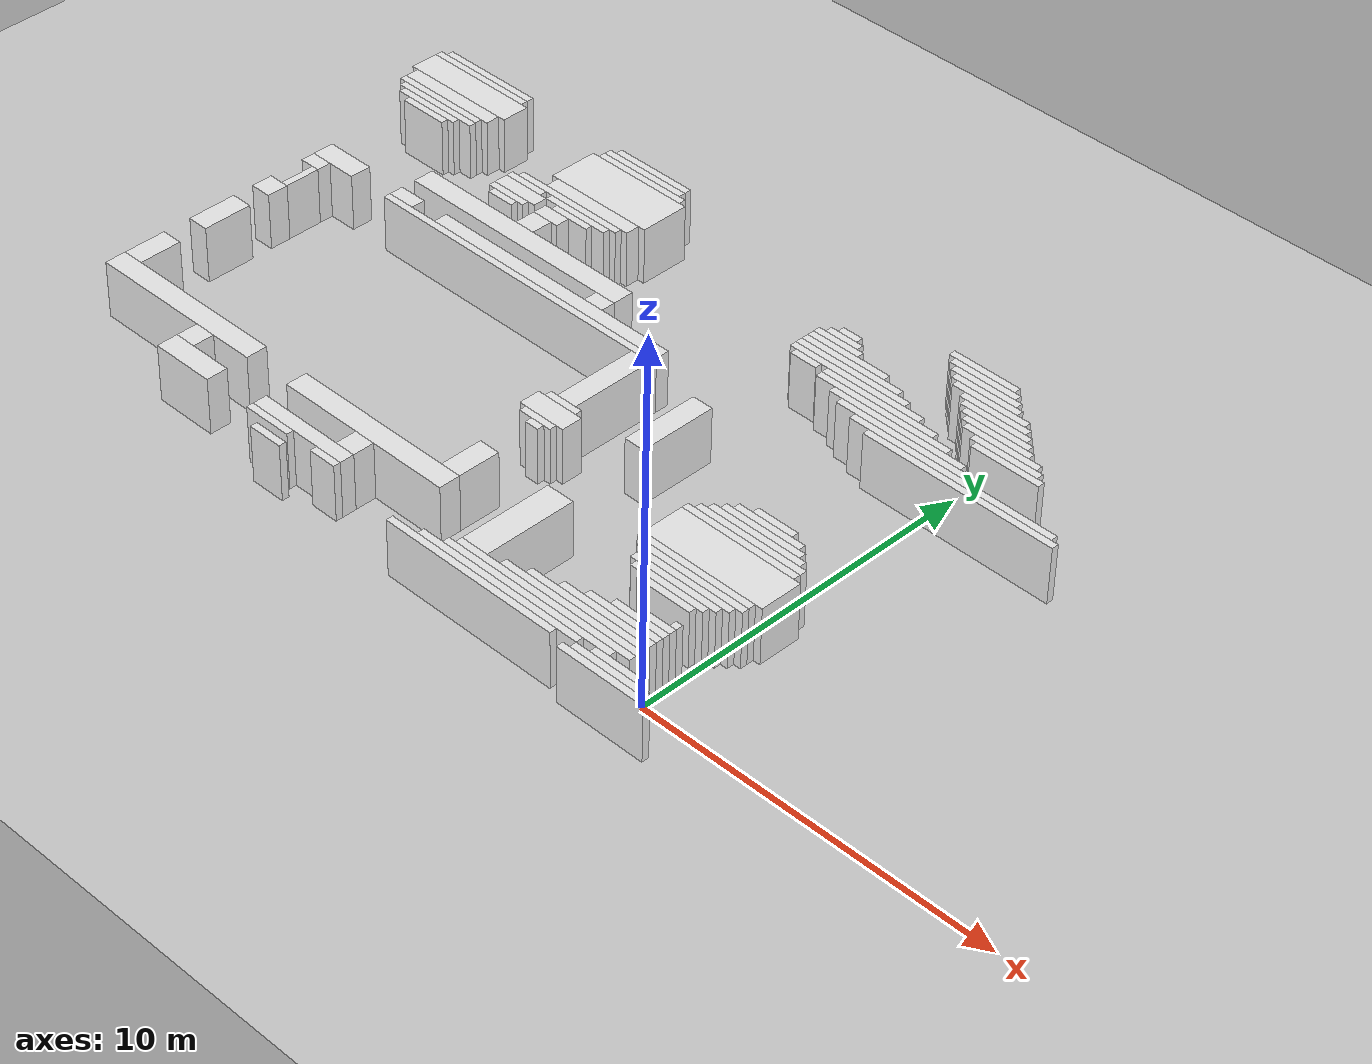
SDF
<sdf version="1.7">
 <world name="default">
  <model name="ground_plane">
   <static>1</static>
   <link name="link">
    <collision name="collision">
     <geometry><plane><normal>0 0 1</normal><size>120 120</size></plane></geometry>
    </collision>
    <visual name="visual">
     <geometry><plane><normal>0 0 1</normal><size>120 120</size></plane></geometry>
     <material>
      <script><uri>file://media/materials/scripts/gazebo.material</uri><name>Gazebo/Grey</name></script>
     </material>
    </visual>
   </link>
  </model>
  <model name="random_complex_03_model">
   <static>1</static>
   <link name="obs_1207">
    <pose>-18.3000 12.7000 0.8000 0 0 0</pose>
    <collision name="obs_1207_col"><geometry><box><size>3.0000 0.2000 1.6000</size></box></geometry></collision>
    <visual name="obs_1207_vis">
     <geometry><box><size>3.0000 0.2000 1.6000</size></box></geometry>
     <material>
      <script><uri>file://media/materials/scripts/gazebo.material</uri><name>Gazebo/White</name></script>
     </material>
    </visual>
   </link>
   <link name="obs_1208">
    <pose>-12.4000 12.7000 0.8000 0 0 0</pose>
    <collision name="obs_1208_col"><geometry><box><size>2.4000 0.2000 1.6000</size></box></geometry></collision>
    <visual name="obs_1208_vis">
     <geometry><box><size>2.4000 0.2000 1.6000</size></box></geometry>
     <material>
      <script><uri>file://media/materials/scripts/gazebo.material</uri><name>Gazebo/White</name></script>
     </material>
    </visual>
   </link>
   <link name="obs_1213">
    <pose>-18.4000 12.5000 0.8000 0 0 0</pose>
    <collision name="obs_1213_col"><geometry><box><size>3.2000 0.2000 1.6000</size></box></geometry></collision>
    <visual name="obs_1213_vis">
     <geometry><box><size>3.2000 0.2000 1.6000</size></box></geometry>
     <material>
      <script><uri>file://media/materials/scripts/gazebo.material</uri><name>Gazebo/White</name></script>
     </material>
    </visual>
   </link>
   <link name="obs_1214">
    <pose>-12.5000 12.5000 0.8000 0 0 0</pose>
    <collision name="obs_1214_col"><geometry><box><size>2.6000 0.2000 1.6000</size></box></geometry></collision>
    <visual name="obs_1214_vis">
     <geometry><box><size>2.6000 0.2000 1.6000</size></box></geometry>
     <material>
      <script><uri>file://media/materials/scripts/gazebo.material</uri><name>Gazebo/White</name></script>
     </material>
    </visual>
   </link>
   <link name="obs_1215">
    <pose>-1.4000 12.5000 0.8000 0 0 0</pose>
    <collision name="obs_1215_col"><geometry><box><size>2.0000 0.2000 1.6000</size></box></geometry></collision>
    <visual name="obs_1215_vis">
     <geometry><box><size>2.0000 0.2000 1.6000</size></box></geometry>
     <material>
      <script><uri>file://media/materials/scripts/gazebo.material</uri><name>Gazebo/White</name></script>
     </material>
    </visual>
   </link>
   <link name="obs_1220">
    <pose>-12.4000 12.3000 0.8000 0 0 0</pose>
    <collision name="obs_1220_col"><geometry><box><size>2.8000 0.2000 1.6000</size></box></geometry></collision>
    <visual name="obs_1220_vis">
     <geometry><box><size>2.8000 0.2000 1.6000</size></box></geometry>
     <material>
      <script><uri>file://media/materials/scripts/gazebo.material</uri><name>Gazebo/White</name></script>
     </material>
    </visual>
   </link>
   <link name="obs_1221">
    <pose>-1.2000 12.3000 0.8000 0 0 0</pose>
    <collision name="obs_1221_col"><geometry><box><size>2.0000 0.2000 1.6000</size></box></geometry></collision>
    <visual name="obs_1221_vis">
     <geometry><box><size>2.0000 0.2000 1.6000</size></box></geometry>
     <material>
      <script><uri>file://media/materials/scripts/gazebo.material</uri><name>Gazebo/White</name></script>
     </material>
    </visual>
   </link>
   <link name="obs_1224">
    <pose>-1.0000 12.1000 0.8000 0 0 0</pose>
    <collision name="obs_1224_col"><geometry><box><size>2.0000 0.2000 1.6000</size></box></geometry></collision>
    <visual name="obs_1224_vis">
     <geometry><box><size>2.0000 0.2000 1.6000</size></box></geometry>
     <material>
      <script><uri>file://media/materials/scripts/gazebo.material</uri><name>Gazebo/White</name></script>
     </material>
    </visual>
   </link>
   <link name="obs_1232">
    <pose>-0.8000 11.9000 0.8000 0 0 0</pose>
    <collision name="obs_1232_col"><geometry><box><size>2.0000 0.2000 1.6000</size></box></geometry></collision>
    <visual name="obs_1232_vis">
     <geometry><box><size>2.0000 0.2000 1.6000</size></box></geometry>
     <material>
      <script><uri>file://media/materials/scripts/gazebo.material</uri><name>Gazebo/White</name></script>
     </material>
    </visual>
   </link>
   <link name="obs_1235">
    <pose>-18.3000 12.0000 0.8000 0 0 0</pose>
    <collision name="obs_1235_col"><geometry><box><size>3.4000 0.8000 1.6000</size></box></geometry></collision>
    <visual name="obs_1235_vis">
     <geometry><box><size>3.4000 0.8000 1.6000</size></box></geometry>
     <material>
      <script><uri>file://media/materials/scripts/gazebo.material</uri><name>Gazebo/White</name></script>
     </material>
    </visual>
   </link>
   <link name="obs_1236">
    <pose>-0.5000 11.7000 0.8000 0 0 0</pose>
    <collision name="obs_1236_col"><geometry><box><size>2.2000 0.2000 1.6000</size></box></geometry></collision>
    <visual name="obs_1236_vis">
     <geometry><box><size>2.2000 0.2000 1.6000</size></box></geometry>
     <material>
      <script><uri>file://media/materials/scripts/gazebo.material</uri><name>Gazebo/White</name></script>
     </material>
    </visual>
   </link>
   <link name="obs_1240">
    <pose>-0.2000 11.5000 0.8000 0 0 0</pose>
    <collision name="obs_1240_col"><geometry><box><size>2.0000 0.2000 1.6000</size></box></geometry></collision>
    <visual name="obs_1240_vis">
     <geometry><box><size>2.0000 0.2000 1.6000</size></box></geometry>
     <material>
      <script><uri>file://media/materials/scripts/gazebo.material</uri><name>Gazebo/White</name></script>
     </material>
    </visual>
   </link>
   <link name="obs_1244">
    <pose>-18.3000 11.4000 0.8000 0 0 0</pose>
    <collision name="obs_1244_col"><geometry><box><size>3.0000 0.4000 1.6000</size></box></geometry></collision>
    <visual name="obs_1244_vis">
     <geometry><box><size>3.0000 0.4000 1.6000</size></box></geometry>
     <material>
      <script><uri>file://media/materials/scripts/gazebo.material</uri><name>Gazebo/White</name></script>
     </material>
    </visual>
   </link>
   <link name="obs_1247">
    <pose>-4.5000 11.3000 0.8000 0 0 0</pose>
    <collision name="obs_1247_col"><geometry><box><size>0.6000 0.2000 1.6000</size></box></geometry></collision>
    <visual name="obs_1247_vis">
     <geometry><box><size>0.6000 0.2000 1.6000</size></box></geometry>
     <material>
      <script><uri>file://media/materials/scripts/gazebo.material</uri><name>Gazebo/White</name></script>
     </material>
    </visual>
   </link>
   <link name="obs_1248">
    <pose>0.0000 11.3000 0.8000 0 0 0</pose>
    <collision name="obs_1248_col"><geometry><box><size>2.0000 0.2000 1.6000</size></box></geometry></collision>
    <visual name="obs_1248_vis">
     <geometry><box><size>2.0000 0.2000 1.6000</size></box></geometry>
     <material>
      <script><uri>file://media/materials/scripts/gazebo.material</uri><name>Gazebo/White</name></script>
     </material>
    </visual>
   </link>
   <link name="obs_1251">
    <pose>-18.4000 11.1000 0.8000 0 0 0</pose>
    <collision name="obs_1251_col"><geometry><box><size>2.8000 0.2000 1.6000</size></box></geometry></collision>
    <visual name="obs_1251_vis">
     <geometry><box><size>2.8000 0.2000 1.6000</size></box></geometry>
     <material>
      <script><uri>file://media/materials/scripts/gazebo.material</uri><name>Gazebo/White</name></script>
     </material>
    </visual>
   </link>
   <link name="obs_1252">
    <pose>-4.5000 11.1000 0.8000 0 0 0</pose>
    <collision name="obs_1252_col"><geometry><box><size>1.0000 0.2000 1.6000</size></box></geometry></collision>
    <visual name="obs_1252_vis">
     <geometry><box><size>1.0000 0.2000 1.6000</size></box></geometry>
     <material>
      <script><uri>file://media/materials/scripts/gazebo.material</uri><name>Gazebo/White</name></script>
     </material>
    </visual>
   </link>
   <link name="obs_1253">
    <pose>0.2000 11.1000 0.8000 0 0 0</pose>
    <collision name="obs_1253_col"><geometry><box><size>2.0000 0.2000 1.6000</size></box></geometry></collision>
    <visual name="obs_1253_vis">
     <geometry><box><size>2.0000 0.2000 1.6000</size></box></geometry>
     <material>
      <script><uri>file://media/materials/scripts/gazebo.material</uri><name>Gazebo/White</name></script>
     </material>
    </visual>
   </link>
   <link name="obs_1256">
    <pose>-12.4000 11.5000 0.8000 0 0 0</pose>
    <collision name="obs_1256_col"><geometry><box><size>3.2000 1.4000 1.6000</size></box></geometry></collision>
    <visual name="obs_1256_vis">
     <geometry><box><size>3.2000 1.4000 1.6000</size></box></geometry>
     <material>
      <script><uri>file://media/materials/scripts/gazebo.material</uri><name>Gazebo/White</name></script>
     </material>
    </visual>
   </link>
   <link name="obs_1262">
    <pose>-18.3000 10.9000 0.8000 0 0 0</pose>
    <collision name="obs_1262_col"><geometry><box><size>2.6000 0.2000 1.6000</size></box></geometry></collision>
    <visual name="obs_1262_vis">
     <geometry><box><size>2.6000 0.2000 1.6000</size></box></geometry>
     <material>
      <script><uri>file://media/materials/scripts/gazebo.material</uri><name>Gazebo/White</name></script>
     </material>
    </visual>
   </link>
   <link name="obs_1263">
    <pose>-4.5000 10.9000 0.8000 0 0 0</pose>
    <collision name="obs_1263_col"><geometry><box><size>1.4000 0.2000 1.6000</size></box></geometry></collision>
    <visual name="obs_1263_vis">
     <geometry><box><size>1.4000 0.2000 1.6000</size></box></geometry>
     <material>
      <script><uri>file://media/materials/scripts/gazebo.material</uri><name>Gazebo/White</name></script>
     </material>
    </visual>
   </link>
   <link name="obs_1264">
    <pose>0.4000 10.9000 0.8000 0 0 0</pose>
    <collision name="obs_1264_col"><geometry><box><size>2.0000 0.2000 1.6000</size></box></geometry></collision>
    <visual name="obs_1264_vis">
     <geometry><box><size>2.0000 0.2000 1.6000</size></box></geometry>
     <material>
      <script><uri>file://media/materials/scripts/gazebo.material</uri><name>Gazebo/White</name></script>
     </material>
    </visual>
   </link>
   <link name="obs_1270">
    <pose>-18.4000 10.7000 0.8000 0 0 0</pose>
    <collision name="obs_1270_col"><geometry><box><size>2.0000 0.2000 1.6000</size></box></geometry></collision>
    <visual name="obs_1270_vis">
     <geometry><box><size>2.0000 0.2000 1.6000</size></box></geometry>
     <material>
      <script><uri>file://media/materials/scripts/gazebo.material</uri><name>Gazebo/White</name></script>
     </material>
    </visual>
   </link>
   <link name="obs_1271">
    <pose>-4.0000 10.7000 0.8000 0 0 0</pose>
    <collision name="obs_1271_col"><geometry><box><size>2.4000 0.2000 1.6000</size></box></geometry></collision>
    <visual name="obs_1271_vis">
     <geometry><box><size>2.4000 0.2000 1.6000</size></box></geometry>
     <material>
      <script><uri>file://media/materials/scripts/gazebo.material</uri><name>Gazebo/White</name></script>
     </material>
    </visual>
   </link>
   <link name="obs_1272">
    <pose>0.7000 10.7000 0.8000 0 0 0</pose>
    <collision name="obs_1272_col"><geometry><box><size>2.2000 0.2000 1.6000</size></box></geometry></collision>
    <visual name="obs_1272_vis">
     <geometry><box><size>2.2000 0.2000 1.6000</size></box></geometry>
     <material>
      <script><uri>file://media/materials/scripts/gazebo.material</uri><name>Gazebo/White</name></script>
     </material>
    </visual>
   </link>
   <link name="obs_1275">
    <pose>-12.4000 10.6000 0.8000 0 0 0</pose>
    <collision name="obs_1275_col"><geometry><box><size>2.8000 0.4000 1.6000</size></box></geometry></collision>
    <visual name="obs_1275_vis">
     <geometry><box><size>2.8000 0.4000 1.6000</size></box></geometry>
     <material>
      <script><uri>file://media/materials/scripts/gazebo.material</uri><name>Gazebo/White</name></script>
     </material>
    </visual>
   </link>
   <link name="obs_1279">
    <pose>-18.3000 10.5000 0.8000 0 0 0</pose>
    <collision name="obs_1279_col"><geometry><box><size>1.4000 0.2000 1.6000</size></box></geometry></collision>
    <visual name="obs_1279_vis">
     <geometry><box><size>1.4000 0.2000 1.6000</size></box></geometry>
     <material>
      <script><uri>file://media/materials/scripts/gazebo.material</uri><name>Gazebo/White</name></script>
     </material>
    </visual>
   </link>
   <link name="obs_1280">
    <pose>-3.7000 10.5000 0.8000 0 0 0</pose>
    <collision name="obs_1280_col"><geometry><box><size>3.0000 0.2000 1.6000</size></box></geometry></collision>
    <visual name="obs_1280_vis">
     <geometry><box><size>3.0000 0.2000 1.6000</size></box></geometry>
     <material>
      <script><uri>file://media/materials/scripts/gazebo.material</uri><name>Gazebo/White</name></script>
     </material>
    </visual>
   </link>
   <link name="obs_1281">
    <pose>1.0000 10.5000 0.8000 0 0 0</pose>
    <collision name="obs_1281_col"><geometry><box><size>2.0000 0.2000 1.6000</size></box></geometry></collision>
    <visual name="obs_1281_vis">
     <geometry><box><size>2.0000 0.2000 1.6000</size></box></geometry>
     <material>
      <script><uri>file://media/materials/scripts/gazebo.material</uri><name>Gazebo/White</name></script>
     </material>
    </visual>
   </link>
   <link name="obs_1290">
    <pose>-12.9000 10.3000 0.8000 0 0 0</pose>
    <collision name="obs_1290_col"><geometry><box><size>3.4000 0.2000 1.6000</size></box></geometry></collision>
    <visual name="obs_1290_vis">
     <geometry><box><size>3.4000 0.2000 1.6000</size></box></geometry>
     <material>
      <script><uri>file://media/materials/scripts/gazebo.material</uri><name>Gazebo/White</name></script>
     </material>
    </visual>
   </link>
   <link name="obs_1291">
    <pose>-3.5000 10.3000 0.8000 0 0 0</pose>
    <collision name="obs_1291_col"><geometry><box><size>3.4000 0.2000 1.6000</size></box></geometry></collision>
    <visual name="obs_1291_vis">
     <geometry><box><size>3.4000 0.2000 1.6000</size></box></geometry>
     <material>
      <script><uri>file://media/materials/scripts/gazebo.material</uri><name>Gazebo/White</name></script>
     </material>
    </visual>
   </link>
   <link name="obs_1292">
    <pose>1.2000 10.3000 0.8000 0 0 0</pose>
    <collision name="obs_1292_col"><geometry><box><size>2.0000 0.2000 1.6000</size></box></geometry></collision>
    <visual name="obs_1292_vis">
     <geometry><box><size>2.0000 0.2000 1.6000</size></box></geometry>
     <material>
      <script><uri>file://media/materials/scripts/gazebo.material</uri><name>Gazebo/White</name></script>
     </material>
    </visual>
   </link>
   <link name="obs_1300">
    <pose>-14.2000 10.1000 0.8000 0 0 0</pose>
    <collision name="obs_1300_col"><geometry><box><size>1.2000 0.2000 1.6000</size></box></geometry></collision>
    <visual name="obs_1300_vis">
     <geometry><box><size>1.2000 0.2000 1.6000</size></box></geometry>
     <material>
      <script><uri>file://media/materials/scripts/gazebo.material</uri><name>Gazebo/White</name></script>
     </material>
    </visual>
   </link>
   <link name="obs_1301">
    <pose>-12.4000 10.1000 0.8000 0 0 0</pose>
    <collision name="obs_1301_col"><geometry><box><size>2.0000 0.2000 1.6000</size></box></geometry></collision>
    <visual name="obs_1301_vis">
     <geometry><box><size>2.0000 0.2000 1.6000</size></box></geometry>
     <material>
      <script><uri>file://media/materials/scripts/gazebo.material</uri><name>Gazebo/White</name></script>
     </material>
    </visual>
   </link>
   <link name="obs_1302">
    <pose>-3.2000 10.1000 0.8000 0 0 0</pose>
    <collision name="obs_1302_col"><geometry><box><size>4.0000 0.2000 1.6000</size></box></geometry></collision>
    <visual name="obs_1302_vis">
     <geometry><box><size>4.0000 0.2000 1.6000</size></box></geometry>
     <material>
      <script><uri>file://media/materials/scripts/gazebo.material</uri><name>Gazebo/White</name></script>
     </material>
    </visual>
   </link>
   <link name="obs_1309">
    <pose>-12.4000 9.9000 0.8000 0 0 0</pose>
    <collision name="obs_1309_col"><geometry><box><size>1.2000 0.2000 1.6000</size></box></geometry></collision>
    <visual name="obs_1309_vis">
     <geometry><box><size>1.2000 0.2000 1.6000</size></box></geometry>
     <material>
      <script><uri>file://media/materials/scripts/gazebo.material</uri><name>Gazebo/White</name></script>
     </material>
    </visual>
   </link>
   <link name="obs_1310">
    <pose>-4.6000 9.9000 0.8000 0 0 0</pose>
    <collision name="obs_1310_col"><geometry><box><size>0.8000 0.2000 1.6000</size></box></geometry></collision>
    <visual name="obs_1310_vis">
     <geometry><box><size>0.8000 0.2000 1.6000</size></box></geometry>
     <material>
      <script><uri>file://media/materials/scripts/gazebo.material</uri><name>Gazebo/White</name></script>
     </material>
    </visual>
   </link>
   <link name="obs_1311">
    <pose>-2.3000 9.9000 0.8000 0 0 0</pose>
    <collision name="obs_1311_col"><geometry><box><size>3.4000 0.2000 1.6000</size></box></geometry></collision>
    <visual name="obs_1311_vis">
     <geometry><box><size>3.4000 0.2000 1.6000</size></box></geometry>
     <material>
      <script><uri>file://media/materials/scripts/gazebo.material</uri><name>Gazebo/White</name></script>
     </material>
    </visual>
   </link>
   <link name="obs_1316">
    <pose>-14.1000 9.8000 0.8000 0 0 0</pose>
    <collision name="obs_1316_col"><geometry><box><size>1.4000 0.4000 1.6000</size></box></geometry></collision>
    <visual name="obs_1316_vis">
     <geometry><box><size>1.4000 0.4000 1.6000</size></box></geometry>
     <material>
      <script><uri>file://media/materials/scripts/gazebo.material</uri><name>Gazebo/White</name></script>
     </material>
    </visual>
   </link>
   <link name="obs_1320">
    <pose>-2.0000 9.7000 0.8000 0 0 0</pose>
    <collision name="obs_1320_col"><geometry><box><size>4.0000 0.2000 1.6000</size></box></geometry></collision>
    <visual name="obs_1320_vis">
     <geometry><box><size>4.0000 0.2000 1.6000</size></box></geometry>
     <material>
      <script><uri>file://media/materials/scripts/gazebo.material</uri><name>Gazebo/White</name></script>
     </material>
    </visual>
   </link>
   <link name="obs_1325">
    <pose>-12.8000 9.6000 0.8000 0 0 0</pose>
    <collision name="obs_1325_col"><geometry><box><size>0.8000 0.4000 1.6000</size></box></geometry></collision>
    <visual name="obs_1325_vis">
     <geometry><box><size>0.8000 0.4000 1.6000</size></box></geometry>
     <material>
      <script><uri>file://media/materials/scripts/gazebo.material</uri><name>Gazebo/White</name></script>
     </material>
    </visual>
   </link>
   <link name="obs_1328">
    <pose>-14.2000 9.5000 0.8000 0 0 0</pose>
    <collision name="obs_1328_col"><geometry><box><size>1.2000 0.2000 1.6000</size></box></geometry></collision>
    <visual name="obs_1328_vis">
     <geometry><box><size>1.2000 0.2000 1.6000</size></box></geometry>
     <material>
      <script><uri>file://media/materials/scripts/gazebo.material</uri><name>Gazebo/White</name></script>
     </material>
    </visual>
   </link>
   <link name="obs_1329">
    <pose>-1.4000 9.5000 0.8000 0 0 0</pose>
    <collision name="obs_1329_col"><geometry><box><size>4.0000 0.2000 1.6000</size></box></geometry></collision>
    <visual name="obs_1329_vis">
     <geometry><box><size>4.0000 0.2000 1.6000</size></box></geometry>
     <material>
      <script><uri>file://media/materials/scripts/gazebo.material</uri><name>Gazebo/White</name></script>
     </material>
    </visual>
   </link>
   <link name="obs_1337">
    <pose>-14.2000 9.3000 0.8000 0 0 0</pose>
    <collision name="obs_1337_col"><geometry><box><size>0.8000 0.2000 1.6000</size></box></geometry></collision>
    <visual name="obs_1337_vis">
     <geometry><box><size>0.8000 0.2000 1.6000</size></box></geometry>
     <material>
      <script><uri>file://media/materials/scripts/gazebo.material</uri><name>Gazebo/White</name></script>
     </material>
    </visual>
   </link>
   <link name="obs_1338">
    <pose>-1.0000 9.3000 0.8000 0 0 0</pose>
    <collision name="obs_1338_col"><geometry><box><size>4.0000 0.2000 1.6000</size></box></geometry></collision>
    <visual name="obs_1338_vis">
     <geometry><box><size>4.0000 0.2000 1.6000</size></box></geometry>
     <material>
      <script><uri>file://media/materials/scripts/gazebo.material</uri><name>Gazebo/White</name></script>
     </material>
    </visual>
   </link>
   <link name="obs_1346">
    <pose>0.6000 9.1000 0.8000 0 0 0</pose>
    <collision name="obs_1346_col"><geometry><box><size>6.0000 0.2000 1.6000</size></box></geometry></collision>
    <visual name="obs_1346_vis">
     <geometry><box><size>6.0000 0.2000 1.6000</size></box></geometry>
     <material>
      <script><uri>file://media/materials/scripts/gazebo.material</uri><name>Gazebo/White</name></script>
     </material>
    </visual>
   </link>
   <link name="obs_1351">
    <pose>-12.9000 9.1000 0.8000 0 0 0</pose>
    <collision name="obs_1351_col"><geometry><box><size>0.6000 0.6000 1.6000</size></box></geometry></collision>
    <visual name="obs_1351_vis">
     <geometry><box><size>0.6000 0.6000 1.6000</size></box></geometry>
     <material>
      <script><uri>file://media/materials/scripts/gazebo.material</uri><name>Gazebo/White</name></script>
     </material>
    </visual>
   </link>
   <link name="obs_1355">
    <pose>1.0000 8.9000 0.8000 0 0 0</pose>
    <collision name="obs_1355_col"><geometry><box><size>5.6000 0.2000 1.6000</size></box></geometry></collision>
    <visual name="obs_1355_vis">
     <geometry><box><size>5.6000 0.2000 1.6000</size></box></geometry>
     <material>
      <script><uri>file://media/materials/scripts/gazebo.material</uri><name>Gazebo/White</name></script>
     </material>
    </visual>
   </link>
   <link name="obs_1373">
    <pose>-12.7000 8.5000 0.8000 0 0 0</pose>
    <collision name="obs_1373_col"><geometry><box><size>7.0000 0.6000 1.6000</size></box></geometry></collision>
    <visual name="obs_1373_vis">
     <geometry><box><size>7.0000 0.6000 1.6000</size></box></geometry>
     <material>
      <script><uri>file://media/materials/scripts/gazebo.material</uri><name>Gazebo/White</name></script>
     </material>
    </visual>
   </link>
   <link name="obs_1387">
    <pose>-9.5000 8.0000 0.8000 0 0 0</pose>
    <collision name="obs_1387_col"><geometry><box><size>0.6000 0.4000 1.6000</size></box></geometry></collision>
    <visual name="obs_1387_vis">
     <geometry><box><size>0.6000 0.4000 1.6000</size></box></geometry>
     <material>
      <script><uri>file://media/materials/scripts/gazebo.material</uri><name>Gazebo/White</name></script>
     </material>
    </visual>
   </link>
   <link name="obs_1401">
    <pose>-15.8000 7.6000 0.8000 0 0 0</pose>
    <collision name="obs_1401_col"><geometry><box><size>0.8000 0.4000 1.6000</size></box></geometry></collision>
    <visual name="obs_1401_vis">
     <geometry><box><size>0.8000 0.4000 1.6000</size></box></geometry>
     <material>
      <script><uri>file://media/materials/scripts/gazebo.material</uri><name>Gazebo/White</name></script>
     </material>
    </visual>
   </link>
   <link name="obs_1402">
    <pose>-10.8000 7.6000 0.8000 0 0 0</pose>
    <collision name="obs_1402_col"><geometry><box><size>7.6000 0.4000 1.6000</size></box></geometry></collision>
    <visual name="obs_1402_vis">
     <geometry><box><size>7.6000 0.4000 1.6000</size></box></geometry>
     <material>
      <script><uri>file://media/materials/scripts/gazebo.material</uri><name>Gazebo/White</name></script>
     </material>
    </visual>
   </link>
   <link name="obs_1407">
    <pose>-18.1000 7.5000 0.8000 0 0 0</pose>
    <collision name="obs_1407_col"><geometry><box><size>1.4000 0.6000 1.6000</size></box></geometry></collision>
    <visual name="obs_1407_vis">
     <geometry><box><size>1.4000 0.6000 1.6000</size></box></geometry>
     <material>
      <script><uri>file://media/materials/scripts/gazebo.material</uri><name>Gazebo/White</name></script>
     </material>
    </visual>
   </link>
   <link name="obs_1411">
    <pose>-11.6000 7.3000 0.8000 0 0 0</pose>
    <collision name="obs_1411_col"><geometry><box><size>9.2000 0.2000 1.6000</size></box></geometry></collision>
    <visual name="obs_1411_vis">
     <geometry><box><size>9.2000 0.2000 1.6000</size></box></geometry>
     <material>
      <script><uri>file://media/materials/scripts/gazebo.material</uri><name>Gazebo/White</name></script>
     </material>
    </visual>
   </link>
   <link name="obs_1422">
    <pose>-18.5000 7.0000 0.8000 0 0 0</pose>
    <collision name="obs_1422_col"><geometry><box><size>0.6000 0.4000 1.6000</size></box></geometry></collision>
    <visual name="obs_1422_vis">
     <geometry><box><size>0.6000 0.4000 1.6000</size></box></geometry>
     <material>
      <script><uri>file://media/materials/scripts/gazebo.material</uri><name>Gazebo/White</name></script>
     </material>
    </visual>
   </link>
   <link name="obs_1453">
    <pose>-18.3000 6.3000 0.8000 0 0 0</pose>
    <collision name="obs_1453_col"><geometry><box><size>0.2000 1.0000 1.6000</size></box></geometry></collision>
    <visual name="obs_1453_vis">
     <geometry><box><size>0.2000 1.0000 1.6000</size></box></geometry>
     <material>
      <script><uri>file://media/materials/scripts/gazebo.material</uri><name>Gazebo/White</name></script>
     </material>
    </visual>
   </link>
   <link name="obs_1478">
    <pose>-18.5000 5.5000 0.8000 0 0 0</pose>
    <collision name="obs_1478_col"><geometry><box><size>0.6000 0.6000 1.6000</size></box></geometry></collision>
    <visual name="obs_1478_vis">
     <geometry><box><size>0.6000 0.6000 1.6000</size></box></geometry>
     <material>
      <script><uri>file://media/materials/scripts/gazebo.material</uri><name>Gazebo/White</name></script>
     </material>
    </visual>
   </link>
   <link name="obs_1489">
    <pose>-1.0000 5.1000 0.8000 0 0 0</pose>
    <collision name="obs_1489_col"><geometry><box><size>1.2000 0.2000 1.6000</size></box></geometry></collision>
    <visual name="obs_1489_vis">
     <geometry><box><size>1.2000 0.2000 1.6000</size></box></geometry>
     <material>
      <script><uri>file://media/materials/scripts/gazebo.material</uri><name>Gazebo/White</name></script>
     </material>
    </visual>
   </link>
   <link name="obs_1494">
    <pose>-7.3000 6.0000 0.8000 0 0 0</pose>
    <collision name="obs_1494_col"><geometry><box><size>0.6000 2.4000 1.6000</size></box></geometry></collision>
    <visual name="obs_1494_vis">
     <geometry><box><size>0.6000 2.4000 1.6000</size></box></geometry>
     <material>
      <script><uri>file://media/materials/scripts/gazebo.material</uri><name>Gazebo/White</name></script>
     </material>
    </visual>
   </link>
   <link name="obs_1495">
    <pose>-5.1000 5.9000 0.8000 0 0 0</pose>
    <collision name="obs_1495_col"><geometry><box><size>0.6000 2.2000 1.6000</size></box></geometry></collision>
    <visual name="obs_1495_vis">
     <geometry><box><size>0.6000 2.2000 1.6000</size></box></geometry>
     <material>
      <script><uri>file://media/materials/scripts/gazebo.material</uri><name>Gazebo/White</name></script>
     </material>
    </visual>
   </link>
   <link name="obs_1498">
    <pose>-1.0000 4.9000 0.8000 0 0 0</pose>
    <collision name="obs_1498_col"><geometry><box><size>2.0000 0.2000 1.6000</size></box></geometry></collision>
    <visual name="obs_1498_vis">
     <geometry><box><size>2.0000 0.2000 1.6000</size></box></geometry>
     <material>
      <script><uri>file://media/materials/scripts/gazebo.material</uri><name>Gazebo/White</name></script>
     </material>
    </visual>
   </link>
   <link name="obs_1506">
    <pose>-7.3000 4.7000 0.8000 0 0 0</pose>
    <collision name="obs_1506_col"><geometry><box><size>1.0000 0.2000 1.6000</size></box></geometry></collision>
    <visual name="obs_1506_vis">
     <geometry><box><size>1.0000 0.2000 1.6000</size></box></geometry>
     <material>
      <script><uri>file://media/materials/scripts/gazebo.material</uri><name>Gazebo/White</name></script>
     </material>
    </visual>
   </link>
   <link name="obs_1507">
    <pose>-1.0000 4.7000 0.8000 0 0 0</pose>
    <collision name="obs_1507_col"><geometry><box><size>2.4000 0.2000 1.6000</size></box></geometry></collision>
    <visual name="obs_1507_vis">
     <geometry><box><size>2.4000 0.2000 1.6000</size></box></geometry>
     <material>
      <script><uri>file://media/materials/scripts/gazebo.material</uri><name>Gazebo/White</name></script>
     </material>
    </visual>
   </link>
   <link name="obs_1511">
    <pose>-1.0000 4.5000 0.8000 0 0 0</pose>
    <collision name="obs_1511_col"><geometry><box><size>2.8000 0.2000 1.6000</size></box></geometry></collision>
    <visual name="obs_1511_vis">
     <geometry><box><size>2.8000 0.2000 1.6000</size></box></geometry>
     <material>
      <script><uri>file://media/materials/scripts/gazebo.material</uri><name>Gazebo/White</name></script>
     </material>
    </visual>
   </link>
   <link name="obs_1515">
    <pose>-1.0000 4.3000 0.8000 0 0 0</pose>
    <collision name="obs_1515_col"><geometry><box><size>3.2000 0.2000 1.6000</size></box></geometry></collision>
    <visual name="obs_1515_vis">
     <geometry><box><size>3.2000 0.2000 1.6000</size></box></geometry>
     <material>
      <script><uri>file://media/materials/scripts/gazebo.material</uri><name>Gazebo/White</name></script>
     </material>
    </visual>
   </link>
   <link name="obs_1516">
    <pose>-7.3000 4.3000 0.8000 0 0 0</pose>
    <collision name="obs_1516_col"><geometry><box><size>1.4000 0.6000 1.6000</size></box></geometry></collision>
    <visual name="obs_1516_vis">
     <geometry><box><size>1.4000 0.6000 1.6000</size></box></geometry>
     <material>
      <script><uri>file://media/materials/scripts/gazebo.material</uri><name>Gazebo/White</name></script>
     </material>
    </visual>
   </link>
   <link name="obs_1519">
    <pose>-1.1000 4.1000 0.8000 0 0 0</pose>
    <collision name="obs_1519_col"><geometry><box><size>3.4000 0.2000 1.6000</size></box></geometry></collision>
    <visual name="obs_1519_vis">
     <geometry><box><size>3.4000 0.2000 1.6000</size></box></geometry>
     <material>
      <script><uri>file://media/materials/scripts/gazebo.material</uri><name>Gazebo/White</name></script>
     </material>
    </visual>
   </link>
   <link name="obs_1525">
    <pose>-7.3000 3.9000 0.8000 0 0 0</pose>
    <collision name="obs_1525_col"><geometry><box><size>1.0000 0.2000 1.6000</size></box></geometry></collision>
    <visual name="obs_1525_vis">
     <geometry><box><size>1.0000 0.2000 1.6000</size></box></geometry>
     <material>
      <script><uri>file://media/materials/scripts/gazebo.material</uri><name>Gazebo/White</name></script>
     </material>
    </visual>
   </link>
   <link name="obs_1528">
    <pose>-7.2000 3.7000 0.8000 0 0 0</pose>
    <collision name="obs_1528_col"><geometry><box><size>0.4000 0.2000 1.6000</size></box></geometry></collision>
    <visual name="obs_1528_vis">
     <geometry><box><size>0.4000 0.2000 1.6000</size></box></geometry>
     <material>
      <script><uri>file://media/materials/scripts/gazebo.material</uri><name>Gazebo/White</name></script>
     </material>
    </visual>
   </link>
   <link name="obs_1535">
    <pose>-18.5000 3.9000 0.8000 0 0 0</pose>
    <collision name="obs_1535_col"><geometry><box><size>0.6000 1.4000 1.6000</size></box></geometry></collision>
    <visual name="obs_1535_vis">
     <geometry><box><size>0.6000 1.4000 1.6000</size></box></geometry>
     <material>
      <script><uri>file://media/materials/scripts/gazebo.material</uri><name>Gazebo/White</name></script>
     </material>
    </visual>
   </link>
   <link name="obs_1543">
    <pose>-1.0000 3.4000 0.8000 0 0 0</pose>
    <collision name="obs_1543_col"><geometry><box><size>3.6000 1.2000 1.6000</size></box></geometry></collision>
    <visual name="obs_1543_vis">
     <geometry><box><size>3.6000 1.2000 1.6000</size></box></geometry>
     <material>
      <script><uri>file://media/materials/scripts/gazebo.material</uri><name>Gazebo/White</name></script>
     </material>
    </visual>
   </link>
   <link name="obs_1545">
    <pose>-1.1000 2.7000 0.8000 0 0 0</pose>
    <collision name="obs_1545_col"><geometry><box><size>3.4000 0.2000 1.6000</size></box></geometry></collision>
    <visual name="obs_1545_vis">
     <geometry><box><size>3.4000 0.2000 1.6000</size></box></geometry>
     <material>
      <script><uri>file://media/materials/scripts/gazebo.material</uri><name>Gazebo/White</name></script>
     </material>
    </visual>
   </link>
   <link name="obs_1546">
    <pose>-1.0000 2.5000 0.8000 0 0 0</pose>
    <collision name="obs_1546_col"><geometry><box><size>3.2000 0.2000 1.6000</size></box></geometry></collision>
    <visual name="obs_1546_vis">
     <geometry><box><size>3.2000 0.2000 1.6000</size></box></geometry>
     <material>
      <script><uri>file://media/materials/scripts/gazebo.material</uri><name>Gazebo/White</name></script>
     </material>
    </visual>
   </link>
   <link name="obs_1549">
    <pose>-1.0000 2.3000 0.8000 0 0 0</pose>
    <collision name="obs_1549_col"><geometry><box><size>2.8000 0.2000 1.6000</size></box></geometry></collision>
    <visual name="obs_1549_vis">
     <geometry><box><size>2.8000 0.2000 1.6000</size></box></geometry>
     <material>
      <script><uri>file://media/materials/scripts/gazebo.material</uri><name>Gazebo/White</name></script>
     </material>
    </visual>
   </link>
   <link name="obs_1554">
    <pose>-1.1000 2.1000 0.8000 0 0 0</pose>
    <collision name="obs_1554_col"><geometry><box><size>2.6000 0.2000 1.6000</size></box></geometry></collision>
    <visual name="obs_1554_vis">
     <geometry><box><size>2.6000 0.2000 1.6000</size></box></geometry>
     <material>
      <script><uri>file://media/materials/scripts/gazebo.material</uri><name>Gazebo/White</name></script>
     </material>
    </visual>
   </link>
   <link name="obs_1560">
    <pose>-1.1000 1.9000 0.8000 0 0 0</pose>
    <collision name="obs_1560_col"><geometry><box><size>2.2000 0.2000 1.6000</size></box></geometry></collision>
    <visual name="obs_1560_vis">
     <geometry><box><size>2.2000 0.2000 1.6000</size></box></geometry>
     <material>
      <script><uri>file://media/materials/scripts/gazebo.material</uri><name>Gazebo/White</name></script>
     </material>
    </visual>
   </link>
   <link name="obs_1564">
    <pose>-1.0000 1.7000 0.8000 0 0 0</pose>
    <collision name="obs_1564_col"><geometry><box><size>1.6000 0.2000 1.6000</size></box></geometry></collision>
    <visual name="obs_1564_vis">
     <geometry><box><size>1.6000 0.2000 1.6000</size></box></geometry>
     <material>
      <script><uri>file://media/materials/scripts/gazebo.material</uri><name>Gazebo/White</name></script>
     </material>
    </visual>
   </link>
   <link name="obs_1573">
    <pose>-18.5000 1.8000 0.8000 0 0 0</pose>
    <collision name="obs_1573_col"><geometry><box><size>0.6000 1.2000 1.6000</size></box></geometry></collision>
    <visual name="obs_1573_vis">
     <geometry><box><size>0.6000 1.2000 1.6000</size></box></geometry>
     <material>
      <script><uri>file://media/materials/scripts/gazebo.material</uri><name>Gazebo/White</name></script>
     </material>
    </visual>
   </link>
   <link name="obs_1574">
    <pose>-7.3000 1.8000 0.8000 0 0 0</pose>
    <collision name="obs_1574_col"><geometry><box><size>0.6000 1.2000 1.6000</size></box></geometry></collision>
    <visual name="obs_1574_vis">
     <geometry><box><size>0.6000 1.2000 1.6000</size></box></geometry>
     <material>
      <script><uri>file://media/materials/scripts/gazebo.material</uri><name>Gazebo/White</name></script>
     </material>
    </visual>
   </link>
   <link name="obs_1582">
    <pose>-0.1000 1.1000 0.8000 0 0 0</pose>
    <collision name="obs_1582_col"><geometry><box><size>0.2000 0.2000 1.6000</size></box></geometry></collision>
    <visual name="obs_1582_vis">
     <geometry><box><size>0.2000 0.2000 1.6000</size></box></geometry>
     <material>
      <script><uri>file://media/materials/scripts/gazebo.material</uri><name>Gazebo/White</name></script>
     </material>
    </visual>
   </link>
   <link name="obs_1589">
    <pose>-0.4000 0.9000 0.8000 0 0 0</pose>
    <collision name="obs_1589_col"><geometry><box><size>0.8000 0.2000 1.6000</size></box></geometry></collision>
    <visual name="obs_1589_vis">
     <geometry><box><size>0.8000 0.2000 1.6000</size></box></geometry>
     <material>
      <script><uri>file://media/materials/scripts/gazebo.material</uri><name>Gazebo/White</name></script>
     </material>
    </visual>
   </link>
   <link name="obs_1593">
    <pose>-16.2000 0.9000 0.8000 0 0 0</pose>
    <collision name="obs_1593_col"><geometry><box><size>5.2000 0.6000 1.6000</size></box></geometry></collision>
    <visual name="obs_1593_vis">
     <geometry><box><size>5.2000 0.6000 1.6000</size></box></geometry>
     <material>
      <script><uri>file://media/materials/scripts/gazebo.material</uri><name>Gazebo/White</name></script>
     </material>
    </visual>
   </link>
   <link name="obs_1594">
    <pose>-9.6000 0.9000 0.8000 0 0 0</pose>
    <collision name="obs_1594_col"><geometry><box><size>5.2000 0.6000 1.6000</size></box></geometry></collision>
    <visual name="obs_1594_vis">
     <geometry><box><size>5.2000 0.6000 1.6000</size></box></geometry>
     <material>
      <script><uri>file://media/materials/scripts/gazebo.material</uri><name>Gazebo/White</name></script>
     </material>
    </visual>
   </link>
   <link name="obs_1599">
    <pose>-0.8000 0.7000 0.8000 0 0 0</pose>
    <collision name="obs_1599_col"><geometry><box><size>1.6000 0.2000 1.6000</size></box></geometry></collision>
    <visual name="obs_1599_vis">
     <geometry><box><size>1.6000 0.2000 1.6000</size></box></geometry>
     <material>
      <script><uri>file://media/materials/scripts/gazebo.material</uri><name>Gazebo/White</name></script>
     </material>
    </visual>
   </link>
   <link name="obs_1609">
    <pose>-1.1000 0.5000 0.8000 0 0 0</pose>
    <collision name="obs_1609_col"><geometry><box><size>2.2000 0.2000 1.6000</size></box></geometry></collision>
    <visual name="obs_1609_vis">
     <geometry><box><size>2.2000 0.2000 1.6000</size></box></geometry>
     <material>
      <script><uri>file://media/materials/scripts/gazebo.material</uri><name>Gazebo/White</name></script>
     </material>
    </visual>
   </link>
   <link name="obs_1614">
    <pose>-1.4000 0.3000 0.8000 0 0 0</pose>
    <collision name="obs_1614_col"><geometry><box><size>2.8000 0.2000 1.6000</size></box></geometry></collision>
    <visual name="obs_1614_vis">
     <geometry><box><size>2.8000 0.2000 1.6000</size></box></geometry>
     <material>
      <script><uri>file://media/materials/scripts/gazebo.material</uri><name>Gazebo/White</name></script>
     </material>
    </visual>
   </link>
   <link name="obs_1617">
    <pose>-15.1000 0.3000 0.8000 0 0 0</pose>
    <collision name="obs_1617_col"><geometry><box><size>0.6000 0.6000 1.6000</size></box></geometry></collision>
    <visual name="obs_1617_vis">
     <geometry><box><size>0.6000 0.6000 1.6000</size></box></geometry>
     <material>
      <script><uri>file://media/materials/scripts/gazebo.material</uri><name>Gazebo/White</name></script>
     </material>
    </visual>
   </link>
   <link name="obs_1618">
    <pose>-9.5000 0.3000 0.8000 0 0 0</pose>
    <collision name="obs_1618_col"><geometry><box><size>0.6000 0.6000 1.6000</size></box></geometry></collision>
    <visual name="obs_1618_vis">
     <geometry><box><size>0.6000 0.6000 1.6000</size></box></geometry>
     <material>
      <script><uri>file://media/materials/scripts/gazebo.material</uri><name>Gazebo/White</name></script>
     </material>
    </visual>
   </link>
   <link name="obs_1623">
    <pose>-1.8000 0.1000 0.8000 0 0 0</pose>
    <collision name="obs_1623_col"><geometry><box><size>3.6000 0.2000 1.6000</size></box></geometry></collision>
    <visual name="obs_1623_vis">
     <geometry><box><size>3.6000 0.2000 1.6000</size></box></geometry>
     <material>
      <script><uri>file://media/materials/scripts/gazebo.material</uri><name>Gazebo/White</name></script>
     </material>
    </visual>
   </link>
   <link name="obs_1626">
    <pose>-5.0000 1.1000 0.8000 0 0 0</pose>
    <collision name="obs_1626_col"><geometry><box><size>0.8000 2.6000 1.6000</size></box></geometry></collision>
    <visual name="obs_1626_vis">
     <geometry><box><size>0.8000 2.6000 1.6000</size></box></geometry>
     <material>
      <script><uri>file://media/materials/scripts/gazebo.material</uri><name>Gazebo/White</name></script>
     </material>
    </visual>
   </link>
   <link name="obs_1631">
    <pose>-2.1000 -0.1000 0.8000 0 0 0</pose>
    <collision name="obs_1631_col"><geometry><box><size>4.2000 0.2000 1.6000</size></box></geometry></collision>
    <visual name="obs_1631_vis">
     <geometry><box><size>4.2000 0.2000 1.6000</size></box></geometry>
     <material>
      <script><uri>file://media/materials/scripts/gazebo.material</uri><name>Gazebo/White</name></script>
     </material>
    </visual>
   </link>
   <link name="obs_1637">
    <pose>-10.7000 -0.2000 0.8000 0 0 0</pose>
    <collision name="obs_1637_col"><geometry><box><size>3.0000 0.4000 1.6000</size></box></geometry></collision>
    <visual name="obs_1637_vis">
     <geometry><box><size>3.0000 0.4000 1.6000</size></box></geometry>
     <material>
      <script><uri>file://media/materials/scripts/gazebo.material</uri><name>Gazebo/White</name></script>
     </material>
    </visual>
   </link>
   <link name="obs_1641">
    <pose>-2.7000 -0.3000 0.8000 0 0 0</pose>
    <collision name="obs_1641_col"><geometry><box><size>5.4000 0.2000 1.6000</size></box></geometry></collision>
    <visual name="obs_1641_vis">
     <geometry><box><size>5.4000 0.2000 1.6000</size></box></geometry>
     <material>
      <script><uri>file://media/materials/scripts/gazebo.material</uri><name>Gazebo/White</name></script>
     </material>
    </visual>
   </link>
   <link name="obs_1643">
    <pose>-14.5000 -0.3000 0.8000 0 0 0</pose>
    <collision name="obs_1643_col"><geometry><box><size>1.8000 0.6000 1.6000</size></box></geometry></collision>
    <visual name="obs_1643_vis">
     <geometry><box><size>1.8000 0.6000 1.6000</size></box></geometry>
     <material>
      <script><uri>file://media/materials/scripts/gazebo.material</uri><name>Gazebo/White</name></script>
     </material>
    </visual>
   </link>
   <link name="obs_1648">
    <pose>-11.5000 -0.5000 0.8000 0 0 0</pose>
    <collision name="obs_1648_col"><geometry><box><size>1.4000 0.2000 1.6000</size></box></geometry></collision>
    <visual name="obs_1648_vis">
     <geometry><box><size>1.4000 0.2000 1.6000</size></box></geometry>
     <material>
      <script><uri>file://media/materials/scripts/gazebo.material</uri><name>Gazebo/White</name></script>
     </material>
    </visual>
   </link>
   <link name="obs_1649">
    <pose>-9.6000 -0.5000 0.8000 0 0 0</pose>
    <collision name="obs_1649_col"><geometry><box><size>0.8000 0.2000 1.6000</size></box></geometry></collision>
    <visual name="obs_1649_vis">
     <geometry><box><size>0.8000 0.2000 1.6000</size></box></geometry>
     <material>
      <script><uri>file://media/materials/scripts/gazebo.material</uri><name>Gazebo/White</name></script>
     </material>
    </visual>
   </link>
   <link name="obs_1650">
    <pose>-3.0000 -0.5000 0.8000 0 0 0</pose>
    <collision name="obs_1650_col"><geometry><box><size>5.2000 0.2000 1.6000</size></box></geometry></collision>
    <visual name="obs_1650_vis">
     <geometry><box><size>5.2000 0.2000 1.6000</size></box></geometry>
     <material>
      <script><uri>file://media/materials/scripts/gazebo.material</uri><name>Gazebo/White</name></script>
     </material>
    </visual>
   </link>
   <link name="obs_1656">
    <pose>-3.7000 -0.7000 0.8000 0 0 0</pose>
    <collision name="obs_1656_col"><geometry><box><size>5.0000 0.2000 1.6000</size></box></geometry></collision>
    <visual name="obs_1656_vis">
     <geometry><box><size>5.0000 0.2000 1.6000</size></box></geometry>
     <material>
      <script><uri>file://media/materials/scripts/gazebo.material</uri><name>Gazebo/White</name></script>
     </material>
    </visual>
   </link>
   <link name="obs_1657">
    <pose>-0.1000 -0.7000 0.8000 0 0 0</pose>
    <collision name="obs_1657_col"><geometry><box><size>1.4000 0.2000 1.6000</size></box></geometry></collision>
    <visual name="obs_1657_vis">
     <geometry><box><size>1.4000 0.2000 1.6000</size></box></geometry>
     <material>
      <script><uri>file://media/materials/scripts/gazebo.material</uri><name>Gazebo/White</name></script>
     </material>
    </visual>
   </link>
   <link name="obs_1667">
    <pose>-11.1000 -0.9000 0.8000 0 0 0</pose>
    <collision name="obs_1667_col"><geometry><box><size>1.0000 0.2000 1.6000</size></box></geometry></collision>
    <visual name="obs_1667_vis">
     <geometry><box><size>1.0000 0.2000 1.6000</size></box></geometry>
     <material>
      <script><uri>file://media/materials/scripts/gazebo.material</uri><name>Gazebo/White</name></script>
     </material>
    </visual>
   </link>
   <link name="obs_1668">
    <pose>-4.4000 -0.9000 0.8000 0 0 0</pose>
    <collision name="obs_1668_col"><geometry><box><size>5.2000 0.2000 1.6000</size></box></geometry></collision>
    <visual name="obs_1668_vis">
     <geometry><box><size>5.2000 0.2000 1.6000</size></box></geometry>
     <material>
      <script><uri>file://media/materials/scripts/gazebo.material</uri><name>Gazebo/White</name></script>
     </material>
    </visual>
   </link>
   <link name="obs_1669">
    <pose>-0.1000 -0.9000 0.8000 0 0 0</pose>
    <collision name="obs_1669_col"><geometry><box><size>2.2000 0.2000 1.6000</size></box></geometry></collision>
    <visual name="obs_1669_vis">
     <geometry><box><size>2.2000 0.2000 1.6000</size></box></geometry>
     <material>
      <script><uri>file://media/materials/scripts/gazebo.material</uri><name>Gazebo/White</name></script>
     </material>
    </visual>
   </link>
   <link name="obs_1679">
    <pose>-0.1000 -1.1000 0.8000 0 0 0</pose>
    <collision name="obs_1679_col"><geometry><box><size>2.6000 0.2000 1.6000</size></box></geometry></collision>
    <visual name="obs_1679_vis">
     <geometry><box><size>2.6000 0.2000 1.6000</size></box></geometry>
     <material>
      <script><uri>file://media/materials/scripts/gazebo.material</uri><name>Gazebo/White</name></script>
     </material>
    </visual>
   </link>
  </model>
 </world>
</sdf>
